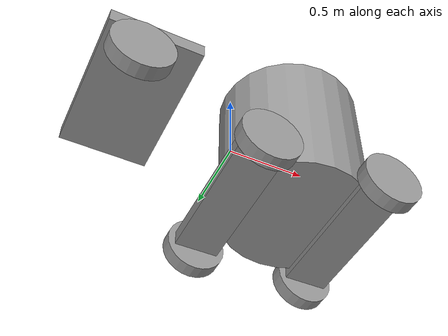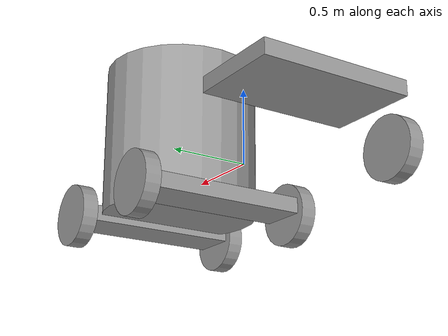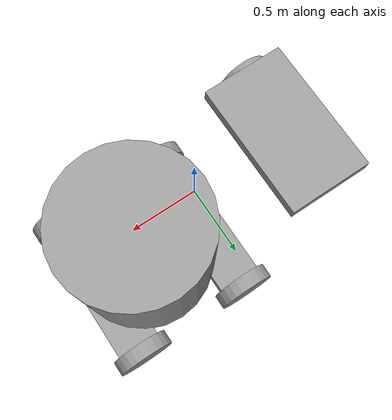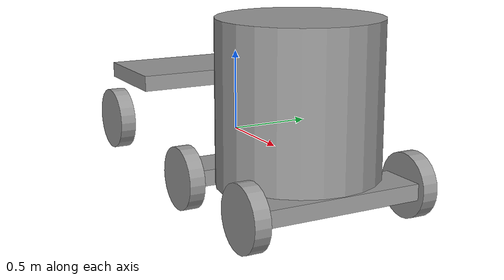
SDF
<?xml version='1.0'?>
<sdf version='1.6'>
  <model name='4wheelrobot'>
    <link name='link_0'>
      <pose frame=''>-0.689748 0.045186 0.26 0 -0 0</pose>
      <inertial>
        <mass>1</mass>
        <inertia>
          <ixx>0.166667</ixx>
          <ixy>0</ixy>
          <ixz>0</ixz>
          <iyy>0.166667</iyy>
          <iyz>0</iyz>
          <izz>0.166667</izz>
        </inertia>
        <pose frame=''>0 0 0.2 0 -0 0</pose>
      </inertial>
      <gravity>1</gravity>
      <self_collide>0</self_collide>
      <kinematic>0</kinematic>
      <visual name='visual'>
        <pose frame=''>0 0 0 0 -0 0</pose>
        <geometry>
          <box>
            <size>0.6 1 0.1</size>
          </box>
        </geometry>
        <material>
          <lighting>1</lighting>
          <script>
            <uri>file://media/materials/scripts/gazebo.material</uri>
            <name>Gazebo/Grey</name>
          </script>
          <shader type='pixel'>
            <normal_map>__default__</normal_map>
          </shader>
          <ambient>0.3 0.3 0.3 1</ambient>
          <diffuse>0.7 0.7 0.7 1</diffuse>
          <specular>0.01 0.01 0.01 1</specular>
          <emissive>0 0 0 1</emissive>
        </material>
        <transparency>0</transparency>
        <cast_shadows>1</cast_shadows>
      </visual>
      <collision name='collision'>
        <laser_retro>0</laser_retro>
        <max_contacts>10</max_contacts>
        <pose frame=''>0 0 0 0 -0 0</pose>
        <geometry>
          <box>
            <size>0.6 1 0.1</size>
          </box>
        </geometry>
        <surface>
          <friction>
            <ode>
              <mu>1</mu>
              <mu2>1</mu2>
              <fdir1>0 0 0</fdir1>
              <slip1>0</slip1>
              <slip2>0</slip2>
            </ode>
            <torsional>
              <coefficient>1</coefficient>
              <patch_radius>0</patch_radius>
              <surface_radius>0</surface_radius>
              <use_patch_radius>1</use_patch_radius>
              <ode>
                <slip>0</slip>
              </ode>
            </torsional>
          </friction>
          <bounce>
            <restitution_coefficient>0</restitution_coefficient>
            <threshold>1e+06</threshold>
          </bounce>
          <contact>
            <collide_without_contact>0</collide_without_contact>
            <collide_without_contact_bitmask>1</collide_without_contact_bitmask>
            <collide_bitmask>1</collide_bitmask>
            <ode>
              <soft_cfm>0</soft_cfm>
              <soft_erp>0.2</soft_erp>
              <kp>1e+13</kp>
              <kd>1</kd>
              <max_vel>0.01</max_vel>
              <min_depth>0</min_depth>
            </ode>
            <bullet>
              <split_impulse>1</split_impulse>
              <split_impulse_penetration_threshold>-0.01</split_impulse_penetration_threshold>
              <soft_cfm>0</soft_cfm>
              <soft_erp>0.2</soft_erp>
              <kp>1e+13</kp>
              <kd>1</kd>
            </bullet>
          </contact>
        </surface>
      </collision>
    </link>
    <link name='link_1'>
      <pose frame=''>-0.789748 -0.504834 -0.04 1.5707 -0 0</pose>
      <inertial>
        <mass>1</mass>
        <inertia>
          <ixx>0.145833</ixx>
          <ixy>0</ixy>
          <ixz>0</ixz>
          <iyy>0.145833</iyy>
          <iyz>0</iyz>
          <izz>0.125</izz>
        </inertia>
        <pose frame=''>0 0 0 0 -0 0</pose>
      </inertial>
      <gravity>1</gravity>
      <self_collide>0</self_collide>
      <kinematic>0</kinematic>
      <visual name='visual'>
        <pose frame=''>0 0 0 0 -0 0</pose>
        <geometry>
          <cylinder>
            <radius>0.2</radius>
            <length>0.1</length>
          </cylinder>
        </geometry>
        <material>
          <lighting>1</lighting>
          <script>
            <uri>file://media/materials/scripts/gazebo.material</uri>
            <name>Gazebo/Grey</name>
          </script>
          <shader type='pixel'>
            <normal_map>__default__</normal_map>
          </shader>
          <ambient>0.3 0.3 0.3 1</ambient>
          <diffuse>0.7 0.7 0.7 1</diffuse>
          <specular>0.01 0.01 0.01 1</specular>
          <emissive>0 0 0 1</emissive>
        </material>
        <transparency>0</transparency>
        <cast_shadows>1</cast_shadows>
      </visual>
      <collision name='collision'>
        <laser_retro>0</laser_retro>
        <max_contacts>10</max_contacts>
        <pose frame=''>0 0 0 0 -0 0</pose>
        <geometry>
          <cylinder>
            <radius>0.2</radius>
            <length>0.1</length>
          </cylinder>
        </geometry>
        <surface>
          <friction>
            <ode>
              <mu>1</mu>
              <mu2>1</mu2>
              <fdir1>0 0 0</fdir1>
              <slip1>0</slip1>
              <slip2>0</slip2>
            </ode>
            <torsional>
              <coefficient>1</coefficient>
              <patch_radius>0</patch_radius>
              <surface_radius>0</surface_radius>
              <use_patch_radius>1</use_patch_radius>
              <ode>
                <slip>0</slip>
              </ode>
            </torsional>
          </friction>
          <bounce>
            <restitution_coefficient>0</restitution_coefficient>
            <threshold>1e+06</threshold>
          </bounce>
          <contact>
            <collide_without_contact>0</collide_without_contact>
            <collide_without_contact_bitmask>1</collide_without_contact_bitmask>
            <collide_bitmask>1</collide_bitmask>
            <ode>
              <soft_cfm>0</soft_cfm>
              <soft_erp>0.2</soft_erp>
              <kp>1e+13</kp>
              <kd>1</kd>
              <max_vel>0.01</max_vel>
              <min_depth>0</min_depth>
            </ode>
            <bullet>
              <split_impulse>1</split_impulse>
              <split_impulse_penetration_threshold>-0.01</split_impulse_penetration_threshold>
              <soft_cfm>0</soft_cfm>
              <soft_erp>0.2</soft_erp>
              <kp>1e+13</kp>
              <kd>1</kd>
            </bullet>
          </contact>
        </surface>
      </collision>
    </link>
    <link name='link_2'>
      <pose frame=''>0.530348 0.148342 0.26 0 -0 0</pose>
      <inertial>
        <mass>1</mass>
        <inertia>
          <ixx>0.145833</ixx>
          <ixy>0</ixy>
          <ixz>0</ixz>
          <iyy>0.145833</iyy>
          <iyz>0</iyz>
          <izz>0.125</izz>
        </inertia>
      </inertial>
      <visual name='visual'>
        <pose frame=''>0 0 0 0 -0 0</pose>
        <geometry>
          <cylinder>
            <radius>0.5</radius>
            <length>1</length>
          </cylinder>
        </geometry>
        <material>
          <lighting>1</lighting>
          <script>
            <uri>file://media/materials/scripts/gazebo.material</uri>
            <name>Gazebo/Grey</name>
          </script>
          <shader type='pixel'/>
          <ambient>0.3 0.3 0.3 1</ambient>
          <diffuse>0.7 0.7 0.7 1</diffuse>
          <specular>0.01 0.01 0.01 1</specular>
          <emissive>0 0 0 1</emissive>
        </material>
        <transparency>0</transparency>
        <cast_shadows>1</cast_shadows>
      </visual>
      <collision name='collision'>
        <laser_retro>0</laser_retro>
        <max_contacts>10</max_contacts>
        <pose frame=''>0 0 0 0 -0 0</pose>
        <geometry>
          <cylinder>
            <radius>0.5</radius>
            <length>1</length>
          </cylinder>
        </geometry>
        <surface>
          <friction>
            <ode>
              <mu>1</mu>
              <mu2>1</mu2>
              <fdir1>0 0 0</fdir1>
              <slip1>0</slip1>
              <slip2>0</slip2>
            </ode>
            <torsional>
              <coefficient>1</coefficient>
              <patch_radius>0</patch_radius>
              <surface_radius>0</surface_radius>
              <use_patch_radius>1</use_patch_radius>
              <ode>
                <slip>0</slip>
              </ode>
            </torsional>
          </friction>
          <bounce>
            <restitution_coefficient>0</restitution_coefficient>
            <threshold>1e+06</threshold>
          </bounce>
          <contact>
            <collide_without_contact>0</collide_without_contact>
            <collide_without_contact_bitmask>1</collide_without_contact_bitmask>
            <collide_bitmask>1</collide_bitmask>
            <ode>
              <soft_cfm>0</soft_cfm>
              <soft_erp>0.2</soft_erp>
              <kp>1e+13</kp>
              <kd>1</kd>
              <max_vel>0.01</max_vel>
              <min_depth>0</min_depth>
            </ode>
            <bullet>
              <split_impulse>1</split_impulse>
              <split_impulse_penetration_threshold>-0.01</split_impulse_penetration_threshold>
              <soft_cfm>0</soft_cfm>
              <soft_erp>0.2</soft_erp>
              <kp>1e+13</kp>
              <kd>1</kd>
            </bullet>
          </contact>
        </surface>
      </collision>
    </link>
    <model name='robot'>
      <link name='link_0'>
        <pose frame=''>0 0 0.008314 0 -0 0</pose>
        <inertial>
          <mass>1</mass>
          <inertia>
            <ixx>0.166667</ixx>
            <ixy>0</ixy>
            <ixz>0</ixz>
            <iyy>0.166667</iyy>
            <iyz>0</iyz>
            <izz>0.166667</izz>
          </inertia>
          <pose frame=''>0 0 0 0 -0 0</pose>
        </inertial>
        <gravity>1</gravity>
        <self_collide>0</self_collide>
        <kinematic>0</kinematic>
        <visual name='visual'>
          <pose frame=''>0 0 0 0 -0 0</pose>
          <geometry>
            <box>
              <size>0.3 1 0.1</size>
            </box>
          </geometry>
          <material>
            <lighting>1</lighting>
            <script>
              <uri>file://media/materials/scripts/gazebo.material</uri>
              <name>Gazebo/Grey</name>
            </script>
            <shader type='pixel'>
              <normal_map>__default__</normal_map>
            </shader>
            <ambient>0.3 0.3 0.3 1</ambient>
            <diffuse>0.7 0.7 0.7 1</diffuse>
            <specular>0.01 0.01 0.01 1</specular>
            <emissive>0 0 0 1</emissive>
          </material>
          <transparency>0</transparency>
          <cast_shadows>1</cast_shadows>
        </visual>
        <collision name='collision'>
          <laser_retro>0</laser_retro>
          <max_contacts>10</max_contacts>
          <pose frame=''>0 0 0 0 -0 0</pose>
          <geometry>
            <box>
              <size>0.3 1 0.1</size>
            </box>
          </geometry>
          <surface>
            <friction>
              <ode>
                <mu>1</mu>
                <mu2>1</mu2>
                <fdir1>0 0 0</fdir1>
                <slip1>0</slip1>
                <slip2>0</slip2>
              </ode>
              <torsional>
                <coefficient>1</coefficient>
                <patch_radius>0</patch_radius>
                <surface_radius>0</surface_radius>
                <use_patch_radius>1</use_patch_radius>
                <ode>
                  <slip>0</slip>
                </ode>
              </torsional>
            </friction>
            <bounce>
              <restitution_coefficient>0</restitution_coefficient>
              <threshold>1e+06</threshold>
            </bounce>
            <contact>
              <collide_without_contact>0</collide_without_contact>
              <collide_without_contact_bitmask>1</collide_without_contact_bitmask>
              <collide_bitmask>1</collide_bitmask>
              <ode>
                <soft_cfm>0</soft_cfm>
                <soft_erp>0.2</soft_erp>
                <kp>1e+13</kp>
                <kd>1</kd>
                <max_vel>0.01</max_vel>
                <min_depth>0</min_depth>
              </ode>
              <bullet>
                <split_impulse>1</split_impulse>
                <split_impulse_penetration_threshold>-0.01</split_impulse_penetration_threshold>
                <soft_cfm>0</soft_cfm>
                <soft_erp>0.2</soft_erp>
                <kp>1e+13</kp>
                <kd>1</kd>
              </bullet>
            </contact>
          </surface>
        </collision>
      </link>
      <link name='link_1'>
        <pose frame=''>0 -0.550019 -0.016627 1.5707 -0 0</pose>
        <inertial>
          <mass>1</mass>
          <inertia>
            <ixx>0.145833</ixx>
            <ixy>0</ixy>
            <ixz>0</ixz>
            <iyy>0.145833</iyy>
            <iyz>0</iyz>
            <izz>0.125</izz>
          </inertia>
          <pose frame=''>0 0 0 0 -0 0</pose>
        </inertial>
        <gravity>1</gravity>
        <self_collide>0</self_collide>
        <kinematic>0</kinematic>
        <visual name='visual'>
          <pose frame=''>0 0 0 0 -0 0</pose>
          <geometry>
            <cylinder>
              <radius>0.2</radius>
              <length>0.1</length>
            </cylinder>
          </geometry>
          <material>
            <lighting>1</lighting>
            <script>
              <uri>file://media/materials/scripts/gazebo.material</uri>
              <name>Gazebo/Grey</name>
            </script>
            <shader type='pixel'>
              <normal_map>__default__</normal_map>
            </shader>
            <ambient>0.3 0.3 0.3 1</ambient>
            <diffuse>0.7 0.7 0.7 1</diffuse>
            <specular>0.01 0.01 0.01 1</specular>
            <emissive>0 0 0 1</emissive>
          </material>
          <transparency>0</transparency>
          <cast_shadows>1</cast_shadows>
        </visual>
        <collision name='collision'>
          <laser_retro>0</laser_retro>
          <max_contacts>10</max_contacts>
          <pose frame=''>0 0 0 0 -0 0</pose>
          <geometry>
            <cylinder>
              <radius>0.2</radius>
              <length>0.1</length>
            </cylinder>
          </geometry>
          <surface>
            <friction>
              <ode>
                <mu>1</mu>
                <mu2>1</mu2>
                <fdir1>0 0 0</fdir1>
                <slip1>0</slip1>
                <slip2>0</slip2>
              </ode>
              <torsional>
                <coefficient>1</coefficient>
                <patch_radius>0</patch_radius>
                <surface_radius>0</surface_radius>
                <use_patch_radius>1</use_patch_radius>
                <ode>
                  <slip>0</slip>
                </ode>
              </torsional>
            </friction>
            <bounce>
              <restitution_coefficient>0</restitution_coefficient>
              <threshold>1e+06</threshold>
            </bounce>
            <contact>
              <collide_without_contact>0</collide_without_contact>
              <collide_without_contact_bitmask>1</collide_without_contact_bitmask>
              <collide_bitmask>1</collide_bitmask>
              <ode>
                <soft_cfm>0</soft_cfm>
                <soft_erp>0.2</soft_erp>
                <kp>1e+13</kp>
                <kd>1</kd>
                <max_vel>0.01</max_vel>
                <min_depth>0</min_depth>
              </ode>
              <bullet>
                <split_impulse>1</split_impulse>
                <split_impulse_penetration_threshold>-0.01</split_impulse_penetration_threshold>
                <soft_cfm>0</soft_cfm>
                <soft_erp>0.2</soft_erp>
                <kp>1e+13</kp>
                <kd>1</kd>
              </bullet>
            </contact>
          </surface>
        </collision>
      </link>
      <link name='link_1_clone'>
        <pose frame=''>0 0.550019 0.008314 1.5707 -0 0</pose>
        <inertial>
          <mass>1</mass>
          <inertia>
            <ixx>0.145833</ixx>
            <ixy>0</ixy>
            <ixz>0</ixz>
            <iyy>0.145833</iyy>
            <iyz>0</iyz>
            <izz>0.125</izz>
          </inertia>
          <pose frame=''>0 0 0 0 -0 0</pose>
        </inertial>
        <self_collide>0</self_collide>
        <kinematic>0</kinematic>
        <visual name='visual'>
          <pose frame=''>0 0 0 0 -0 0</pose>
          <geometry>
            <cylinder>
              <radius>0.2</radius>
              <length>0.1</length>
            </cylinder>
          </geometry>
          <material>
            <lighting>1</lighting>
            <script>
              <uri>file://media/materials/scripts/gazebo.material</uri>
              <name>Gazebo/Grey</name>
            </script>
            <shader type='pixel'>
              <normal_map>__default__</normal_map>
            </shader>
            <ambient>0.3 0.3 0.3 1</ambient>
            <diffuse>0.7 0.7 0.7 1</diffuse>
            <specular>0.01 0.01 0.01 1</specular>
            <emissive>0 0 0 1</emissive>
          </material>
          <transparency>0</transparency>
          <cast_shadows>1</cast_shadows>
        </visual>
        <collision name='collision'>
          <laser_retro>0</laser_retro>
          <max_contacts>10</max_contacts>
          <pose frame=''>0 0 0 0 -0 0</pose>
          <geometry>
            <cylinder>
              <radius>0.2</radius>
              <length>0.1</length>
            </cylinder>
          </geometry>
          <surface>
            <friction>
              <ode>
                <mu>1</mu>
                <mu2>1</mu2>
                <fdir1>0 0 0</fdir1>
                <slip1>0</slip1>
                <slip2>0</slip2>
              </ode>
              <torsional>
                <coefficient>1</coefficient>
                <patch_radius>0</patch_radius>
                <surface_radius>0</surface_radius>
                <use_patch_radius>1</use_patch_radius>
                <ode>
                  <slip>0</slip>
                </ode>
              </torsional>
            </friction>
            <bounce>
              <restitution_coefficient>0</restitution_coefficient>
              <threshold>1e+06</threshold>
            </bounce>
            <contact>
              <collide_without_contact>0</collide_without_contact>
              <collide_without_contact_bitmask>1</collide_without_contact_bitmask>
              <collide_bitmask>1</collide_bitmask>
              <ode>
                <soft_cfm>0</soft_cfm>
                <soft_erp>0.2</soft_erp>
                <kp>1e+13</kp>
                <kd>1</kd>
                <max_vel>0.01</max_vel>
                <min_depth>0</min_depth>
              </ode>
              <bullet>
                <split_impulse>1</split_impulse>
                <split_impulse_penetration_threshold>-0.01</split_impulse_penetration_threshold>
                <soft_cfm>0</soft_cfm>
                <soft_erp>0.2</soft_erp>
                <kp>1e+13</kp>
                <kd>1</kd>
              </bullet>
            </contact>
          </surface>
        </collision>
      </link>
      <joint name='link_0_JOINT_0' type='revolute'>
        <parent>link_0</parent>
        <child>link_1</child>
        <pose frame=''>0 0 0 0 -0 0</pose>
        <axis>
          <xyz>0 0 1</xyz>
          <use_parent_model_frame>0</use_parent_model_frame>
          <limit>
            <lower>-1.79769e+308</lower>
            <upper>1.79769e+308</upper>
            <effort>-1</effort>
            <velocity>-1</velocity>
          </limit>
          <dynamics>
            <spring_reference>0</spring_reference>
            <spring_stiffness>0</spring_stiffness>
            <damping>0</damping>
          </dynamics>
        </axis>
        <physics>
          <ode>
            <limit>
              <cfm>0</cfm>
              <erp>0.2</erp>
            </limit>
            <suspension>
              <cfm>0</cfm>
              <erp>0.2</erp>
            </suspension>
          </ode>
        </physics>
      </joint>
      <joint name='link_0_JOINT_1' type='revolute'>
        <parent>link_0</parent>
        <child>link_1_clone</child>
        <pose frame=''>0 0 0 0 -0 0</pose>
        <axis>
          <xyz>0 0 1</xyz>
          <use_parent_model_frame>0</use_parent_model_frame>
          <limit>
            <lower>-1.79769e+308</lower>
            <upper>1.79769e+308</upper>
            <effort>-1</effort>
            <velocity>-1</velocity>
          </limit>
          <dynamics>
            <spring_reference>0</spring_reference>
            <spring_stiffness>0</spring_stiffness>
            <damping>0</damping>
          </dynamics>
        </axis>
        <physics>
          <ode>
            <limit>
              <cfm>0</cfm>
              <erp>0.2</erp>
            </limit>
            <suspension>
              <cfm>0</cfm>
              <erp>0.2</erp>
            </suspension>
          </ode>
        </physics>
      </joint>
      <static>0</static>
      <allow_auto_disable>1</allow_auto_disable>
      <pose frame=''>0.886465 0.152896 -0.24 0 -0 0</pose>
    </model>
    <model name='robot_0'>
      <link name='link_0'>
        <pose frame=''>0 0 0.008314 0 -0 0</pose>
        <inertial>
          <mass>1</mass>
          <inertia>
            <ixx>0.166667</ixx>
            <ixy>0</ixy>
            <ixz>0</ixz>
            <iyy>0.166667</iyy>
            <iyz>0</iyz>
            <izz>0.166667</izz>
          </inertia>
          <pose frame=''>0 0 0 0 -0 0</pose>
        </inertial>
        <gravity>1</gravity>
        <self_collide>0</self_collide>
        <kinematic>0</kinematic>
        <visual name='visual'>
          <pose frame=''>0 0 0 0 -0 0</pose>
          <geometry>
            <box>
              <size>0.3 1 0.1</size>
            </box>
          </geometry>
          <material>
            <lighting>1</lighting>
            <script>
              <uri>file://media/materials/scripts/gazebo.material</uri>
              <name>Gazebo/Grey</name>
            </script>
            <shader type='pixel'>
              <normal_map>__default__</normal_map>
            </shader>
            <ambient>0.3 0.3 0.3 1</ambient>
            <diffuse>0.7 0.7 0.7 1</diffuse>
            <specular>0.01 0.01 0.01 1</specular>
            <emissive>0 0 0 1</emissive>
          </material>
          <transparency>0</transparency>
          <cast_shadows>1</cast_shadows>
        </visual>
        <collision name='collision'>
          <laser_retro>0</laser_retro>
          <max_contacts>10</max_contacts>
          <pose frame=''>0 0 0 0 -0 0</pose>
          <geometry>
            <box>
              <size>0.3 1 0.1</size>
            </box>
          </geometry>
          <surface>
            <friction>
              <ode>
                <mu>1</mu>
                <mu2>1</mu2>
                <fdir1>0 0 0</fdir1>
                <slip1>0</slip1>
                <slip2>0</slip2>
              </ode>
              <torsional>
                <coefficient>1</coefficient>
                <patch_radius>0</patch_radius>
                <surface_radius>0</surface_radius>
                <use_patch_radius>1</use_patch_radius>
                <ode>
                  <slip>0</slip>
                </ode>
              </torsional>
            </friction>
            <bounce>
              <restitution_coefficient>0</restitution_coefficient>
              <threshold>1e+06</threshold>
            </bounce>
            <contact>
              <collide_without_contact>0</collide_without_contact>
              <collide_without_contact_bitmask>1</collide_without_contact_bitmask>
              <collide_bitmask>1</collide_bitmask>
              <ode>
                <soft_cfm>0</soft_cfm>
                <soft_erp>0.2</soft_erp>
                <kp>1e+13</kp>
                <kd>1</kd>
                <max_vel>0.01</max_vel>
                <min_depth>0</min_depth>
              </ode>
              <bullet>
                <split_impulse>1</split_impulse>
                <split_impulse_penetration_threshold>-0.01</split_impulse_penetration_threshold>
                <soft_cfm>0</soft_cfm>
                <soft_erp>0.2</soft_erp>
                <kp>1e+13</kp>
                <kd>1</kd>
              </bullet>
            </contact>
          </surface>
        </collision>
      </link>
      <link name='link_1'>
        <pose frame=''>0 -0.550019 -0.016627 1.5707 -0 0</pose>
        <inertial>
          <mass>1</mass>
          <inertia>
            <ixx>0.145833</ixx>
            <ixy>0</ixy>
            <ixz>0</ixz>
            <iyy>0.145833</iyy>
            <iyz>0</iyz>
            <izz>0.125</izz>
          </inertia>
          <pose frame=''>0 0 0 0 -0 0</pose>
        </inertial>
        <gravity>1</gravity>
        <self_collide>0</self_collide>
        <kinematic>0</kinematic>
        <visual name='visual'>
          <pose frame=''>0 0 0 0 -0 0</pose>
          <geometry>
            <cylinder>
              <radius>0.2</radius>
              <length>0.1</length>
            </cylinder>
          </geometry>
          <material>
            <lighting>1</lighting>
            <script>
              <uri>file://media/materials/scripts/gazebo.material</uri>
              <name>Gazebo/Grey</name>
            </script>
            <shader type='pixel'>
              <normal_map>__default__</normal_map>
            </shader>
            <ambient>0.3 0.3 0.3 1</ambient>
            <diffuse>0.7 0.7 0.7 1</diffuse>
            <specular>0.01 0.01 0.01 1</specular>
            <emissive>0 0 0 1</emissive>
          </material>
          <transparency>0</transparency>
          <cast_shadows>1</cast_shadows>
        </visual>
        <collision name='collision'>
          <laser_retro>0</laser_retro>
          <max_contacts>10</max_contacts>
          <pose frame=''>0 0 0 0 -0 0</pose>
          <geometry>
            <cylinder>
              <radius>0.2</radius>
              <length>0.1</length>
            </cylinder>
          </geometry>
          <surface>
            <friction>
              <ode>
                <mu>1</mu>
                <mu2>1</mu2>
                <fdir1>0 0 0</fdir1>
                <slip1>0</slip1>
                <slip2>0</slip2>
              </ode>
              <torsional>
                <coefficient>1</coefficient>
                <patch_radius>0</patch_radius>
                <surface_radius>0</surface_radius>
                <use_patch_radius>1</use_patch_radius>
                <ode>
                  <slip>0</slip>
                </ode>
              </torsional>
            </friction>
            <bounce>
              <restitution_coefficient>0</restitution_coefficient>
              <threshold>1e+06</threshold>
            </bounce>
            <contact>
              <collide_without_contact>0</collide_without_contact>
              <collide_without_contact_bitmask>1</collide_without_contact_bitmask>
              <collide_bitmask>1</collide_bitmask>
              <ode>
                <soft_cfm>0</soft_cfm>
                <soft_erp>0.2</soft_erp>
                <kp>1e+13</kp>
                <kd>1</kd>
                <max_vel>0.01</max_vel>
                <min_depth>0</min_depth>
              </ode>
              <bullet>
                <split_impulse>1</split_impulse>
                <split_impulse_penetration_threshold>-0.01</split_impulse_penetration_threshold>
                <soft_cfm>0</soft_cfm>
                <soft_erp>0.2</soft_erp>
                <kp>1e+13</kp>
                <kd>1</kd>
              </bullet>
            </contact>
          </surface>
        </collision>
      </link>
      <link name='link_1_clone'>
        <pose frame=''>0 0.550019 0.008314 1.5707 -0 0</pose>
        <inertial>
          <mass>1</mass>
          <inertia>
            <ixx>0.145833</ixx>
            <ixy>0</ixy>
            <ixz>0</ixz>
            <iyy>0.145833</iyy>
            <iyz>0</iyz>
            <izz>0.125</izz>
          </inertia>
          <pose frame=''>0 0 0 0 -0 0</pose>
        </inertial>
        <self_collide>0</self_collide>
        <kinematic>0</kinematic>
        <visual name='visual'>
          <pose frame=''>0 0 0 0 -0 0</pose>
          <geometry>
            <cylinder>
              <radius>0.2</radius>
              <length>0.1</length>
            </cylinder>
          </geometry>
          <material>
            <lighting>1</lighting>
            <script>
              <uri>file://media/materials/scripts/gazebo.material</uri>
              <name>Gazebo/Grey</name>
            </script>
            <shader type='pixel'>
              <normal_map>__default__</normal_map>
            </shader>
            <ambient>0.3 0.3 0.3 1</ambient>
            <diffuse>0.7 0.7 0.7 1</diffuse>
            <specular>0.01 0.01 0.01 1</specular>
            <emissive>0 0 0 1</emissive>
          </material>
          <transparency>0</transparency>
          <cast_shadows>1</cast_shadows>
        </visual>
        <collision name='collision'>
          <laser_retro>0</laser_retro>
          <max_contacts>10</max_contacts>
          <pose frame=''>0 0 0 0 -0 0</pose>
          <geometry>
            <cylinder>
              <radius>0.2</radius>
              <length>0.1</length>
            </cylinder>
          </geometry>
          <surface>
            <friction>
              <ode>
                <mu>1</mu>
                <mu2>1</mu2>
                <fdir1>0 0 0</fdir1>
                <slip1>0</slip1>
                <slip2>0</slip2>
              </ode>
              <torsional>
                <coefficient>1</coefficient>
                <patch_radius>0</patch_radius>
                <surface_radius>0</surface_radius>
                <use_patch_radius>1</use_patch_radius>
                <ode>
                  <slip>0</slip>
                </ode>
              </torsional>
            </friction>
            <bounce>
              <restitution_coefficient>0</restitution_coefficient>
              <threshold>1e+06</threshold>
            </bounce>
            <contact>
              <collide_without_contact>0</collide_without_contact>
              <collide_without_contact_bitmask>1</collide_without_contact_bitmask>
              <collide_bitmask>1</collide_bitmask>
              <ode>
                <soft_cfm>0</soft_cfm>
                <soft_erp>0.2</soft_erp>
                <kp>1e+13</kp>
                <kd>1</kd>
                <max_vel>0.01</max_vel>
                <min_depth>0</min_depth>
              </ode>
              <bullet>
                <split_impulse>1</split_impulse>
                <split_impulse_penetration_threshold>-0.01</split_impulse_penetration_threshold>
                <soft_cfm>0</soft_cfm>
                <soft_erp>0.2</soft_erp>
                <kp>1e+13</kp>
                <kd>1</kd>
              </bullet>
            </contact>
          </surface>
        </collision>
      </link>
      <joint name='link_0_JOINT_0' type='revolute'>
        <parent>link_0</parent>
        <child>link_1</child>
        <pose frame=''>0 0 0 0 -0 0</pose>
        <axis>
          <xyz>0 0 1</xyz>
          <use_parent_model_frame>0</use_parent_model_frame>
          <limit>
            <lower>-1.79769e+308</lower>
            <upper>1.79769e+308</upper>
            <effort>-1</effort>
            <velocity>-1</velocity>
          </limit>
          <dynamics>
            <spring_reference>0</spring_reference>
            <spring_stiffness>0</spring_stiffness>
            <damping>0</damping>
          </dynamics>
        </axis>
        <physics>
          <ode>
            <limit>
              <cfm>0</cfm>
              <erp>0.2</erp>
            </limit>
            <suspension>
              <cfm>0</cfm>
              <erp>0.2</erp>
            </suspension>
          </ode>
        </physics>
      </joint>
      <joint name='link_0_JOINT_1' type='revolute'>
        <parent>link_0</parent>
        <child>link_1_clone</child>
        <pose frame=''>0 0 0 0 -0 0</pose>
        <axis>
          <xyz>0 0 1</xyz>
          <use_parent_model_frame>0</use_parent_model_frame>
          <limit>
            <lower>-1.79769e+308</lower>
            <upper>1.79769e+308</upper>
            <effort>-1</effort>
            <velocity>-1</velocity>
          </limit>
          <dynamics>
            <spring_reference>0</spring_reference>
            <spring_stiffness>0</spring_stiffness>
            <damping>0</damping>
          </dynamics>
        </axis>
        <physics>
          <ode>
            <limit>
              <cfm>0</cfm>
              <erp>0.2</erp>
            </limit>
            <suspension>
              <cfm>0</cfm>
              <erp>0.2</erp>
            </suspension>
          </ode>
        </physics>
      </joint>
      <static>0</static>
      <allow_auto_disable>1</allow_auto_disable>
      <pose frame=''>0.062686 0.15841 -0.24 0 -0 0</pose>
    </model>
    <joint name='link_0_JOINT_2' type='revolute'>
      <parent>link_0</parent>
      <child>link_1</child>
      <pose frame=''>0 0 0 0 -0 0</pose>
      <axis>
        <xyz>0 0 1</xyz>
        <use_parent_model_frame>0</use_parent_model_frame>
        <limit>
          <lower>-1.79769e+308</lower>
          <upper>1.79769e+308</upper>
          <effort>-1</effort>
          <velocity>-1</velocity>
        </limit>
        <dynamics>
          <spring_reference>0</spring_reference>
          <spring_stiffness>0</spring_stiffness>
          <damping>0</damping>
        </dynamics>
      </axis>
      <physics>
        <ode>
          <limit>
            <cfm>0</cfm>
            <erp>0.2</erp>
          </limit>
          <suspension>
            <cfm>0</cfm>
            <erp>0.2</erp>
          </suspension>
        </ode>
      </physics>
    </joint>
    <joint name='link_2_JOINT_6' type='fixed'>
      <parent>link_2</parent>
      <child>robot::link_1</child>
      <pose frame=''>0 0 0.2 0 -0 0</pose>
      <physics>
        <ode>
          <limit>
            <cfm>0</cfm>
            <erp>0.2</erp>
          </limit>
          <suspension>
            <cfm>0</cfm>
            <erp>0.2</erp>
          </suspension>
        </ode>
      </physics>
    </joint>
    <joint name='link_1_JOINT_5' type='fixed'>
      <parent>robot_0::link_1</parent>
      <child>robot::link_1</child>
      <pose frame=''>0 0 0 0 -0 0</pose>
      <physics>
        <ode>
          <limit>
            <cfm>0</cfm>
            <erp>0.2</erp>
          </limit>
          <suspension>
            <cfm>0</cfm>
            <erp>0.2</erp>
          </suspension>
        </ode>
      </physics>
    </joint>
    <joint name='link_1_clone_JOINT_4' type='fixed'>
      <parent>robot_0::link_1_clone</parent>
      <child>robot::link_1_clone</child>
      <pose frame=''>0 0 0 0 -0 0</pose>
      <physics>
        <ode>
          <limit>
            <cfm>0</cfm>
            <erp>0.2</erp>
          </limit>
          <suspension>
            <cfm>0</cfm>
            <erp>0.2</erp>
          </suspension>
        </ode>
      </physics>
    </joint>
    <static>0</static>
    <allow_auto_disable>1</allow_auto_disable>
  </model>
</sdf>
